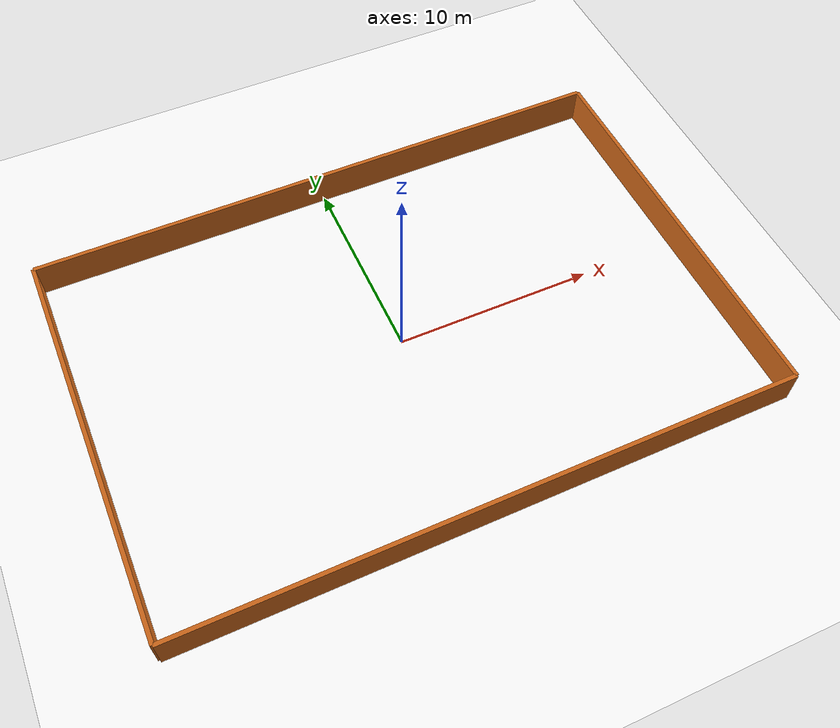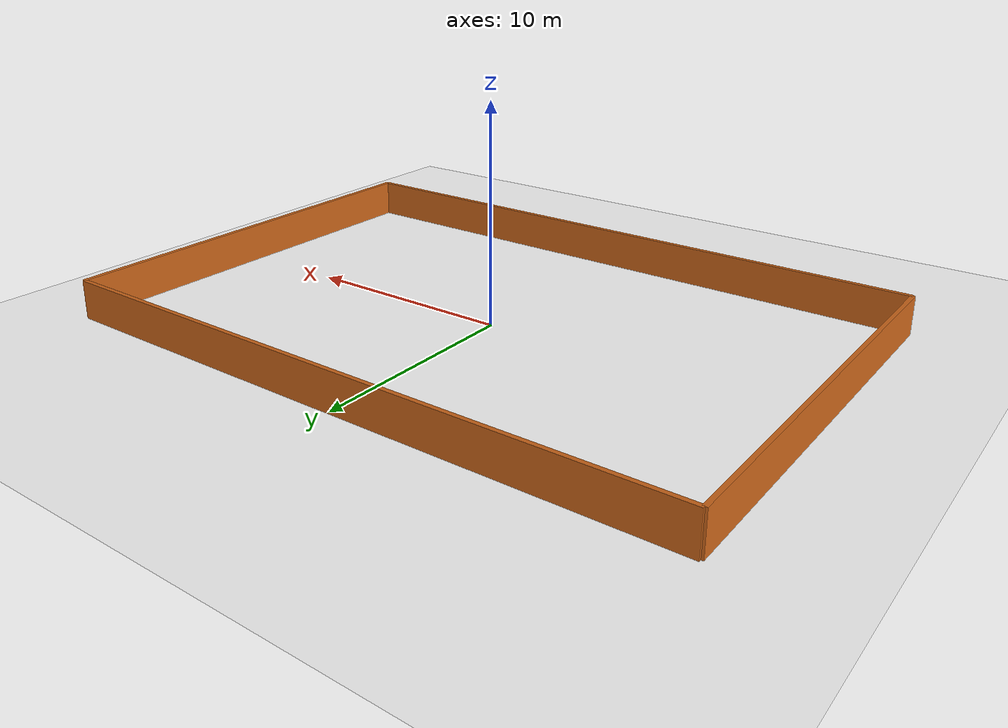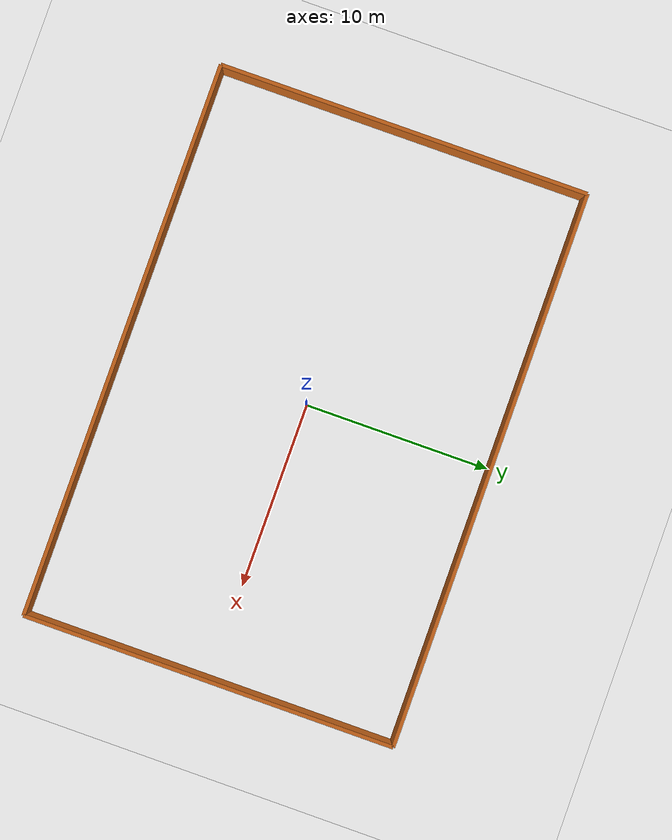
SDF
<?xml version="1.0" ?>
<sdf version="1.7">
  <world name="default">
    <light name="sun" type="directional">
      <cast_shadows>false</cast_shadows>
      <diffuse>1 1 1 1</diffuse>
      <specular>0.1 0.1 0.1 1</specular>
      <direction>-0.3 0.2 -1</direction>
    </light>
    <model name="flat_ground">
      <static>true</static>
      <link name="ground_link">
        <collision name="collision">
          <geometry>
            <plane>
              <normal>0 0 1</normal>
              <size>40 40</size>
            </plane>
          </geometry>
        </collision>
        <visual name="visual">
          <geometry>
            <plane>
              <normal>0 0 1</normal>
              <size>40 40</size>
            </plane>
          </geometry>
          <material>
            <ambient>1 1 1 0</ambient>
            <diffuse>1 1 1 0</diffuse>
          </material>
        </visual>
      </link>
    </model>
    <model name="walls">
      <static>true</static>
      <link name="north">
        <pose>0 10 0.9 0 0 0</pose>
        <collision name="c"><geometry><box><size>30 0.2 1.8</size></box></geometry></collision>
        <visual name="v"><geometry><box><size>30 0.2 1.8</size></box></geometry><material><ambient>0.8 0.4 0.1 1</ambient></material></visual>
      </link>
      <link name="south">
        <pose>0 -10 0.9 0 0 0</pose>
        <collision name="c"><geometry><box><size>30 0.2 1.8</size></box></geometry></collision>
        <visual name="v"><geometry><box><size>30 0.2 1.8</size></box></geometry><material><ambient>0.8 0.4 0.1 1</ambient></material></visual>
      </link>
      <link name="east">
        <pose>15 0 0.9 0 0 1.5708</pose>
        <collision name="c"><geometry><box><size>20 0.2 1.8</size></box></geometry></collision>
        <visual name="v"><geometry><box><size>20 0.2 1.8</size></box></geometry><material><ambient>0.8 0.4 0.1 1</ambient></material></visual>
      </link>
      <link name="west">
        <pose>-15 0 0.9 0 0 1.5708</pose>
        <collision name="c"><geometry><box><size>20 0.2 1.8</size></box></geometry></collision>
        <visual name="v"><geometry><box><size>20 0.2 1.8</size></box></geometry><material><ambient>0.8 0.4 0.1 1</ambient></material></visual>
      </link>
    </model>
    <gravity>0 0 -9.8</gravity>
    <physics type="ode">
      <max_step_size>0.001</max_step_size>
      <real_time_update_rate>1000</real_time_update_rate>
    </physics>
    <scene>
      <ambient>0.5 0.5 0.5 1</ambient>
      <background>0.7 0.7 0.7 1</background>
    </scene>
    <gui fullscreen='0'>
      <camera name='user_camera'>
        <pose>12.5972 -23.0593 21.1428 0 0.655645 2.1482</pose>
        <view_controller>orbit</view_controller>
      </camera>
    </gui>
  </world>
</sdf>
